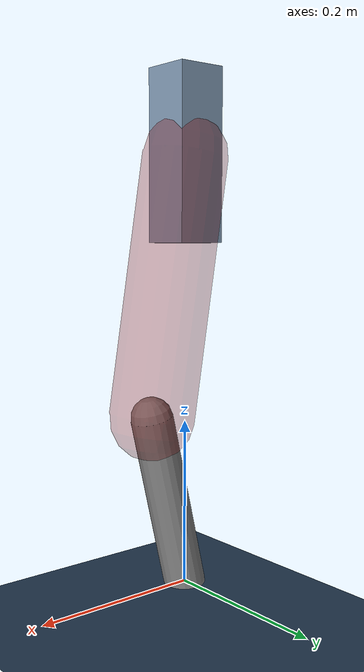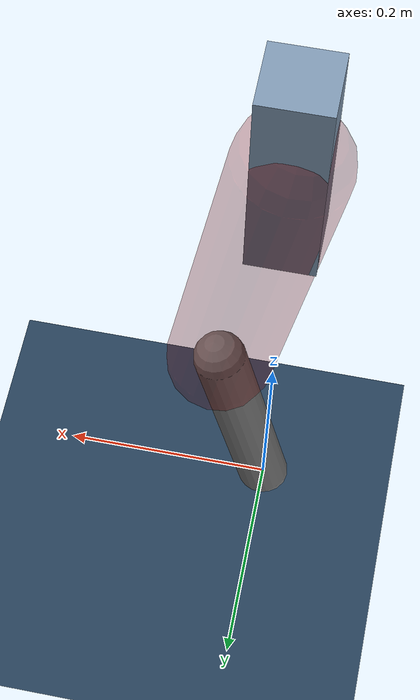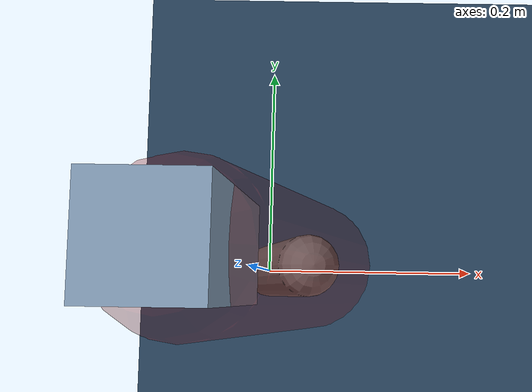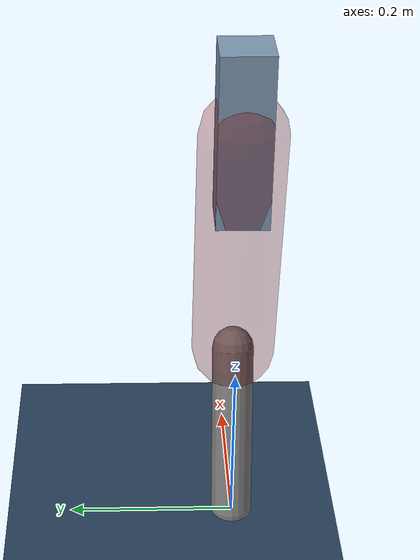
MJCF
<mujoco model="Hopper2D">
	<compiler inertiafromgeom="true" angle="radian" />
	<option timestep="0.001" integrator="implicit" cone="elliptic" solver="Newton" tolerance="1e-10" />

	<default>
		<geom contype="1" conaffinity="1" condim="3" friction="2 0.005 0.0001" solref="0.005 1" />
		<joint limited="true" damping="0.1" />
	</default>

	<asset>
		<texture name="skybox" type="skybox" builtin="gradient" rgb1=".4 .6 .8" rgb2="0 0 0" width="800" height="800" />
		<texture name="grid" type="2d" builtin="checker" rgb1=".1 .2 .3" rgb2=".2 .3 .4" width="300" height="300" mark="edge" markrgb=".2 .3 .4" />
		<material name="ground" texture="grid" texrepeat="1 1" texuniform="true" reflectance="0.1" />
		<material name="leg" rgba="0.5 0.6 0.7 1" />
	</asset>

	<worldbody>

		<geom name="floor" type="plane" size="5 5 0.25" material="ground" />

		<light directional="false" diffuse="0.8 0.8 0.8" specular="0.3 0.3 0.3" pos="0 0 2" dir="0 0 -1" />
		<light mode="targetbodycom" target="base" directional="false" diffuse="0.8 0.8 0.8" specular="0.3 0.3 0.3" pos="0 0 2" dir="0 0 -1" />

		<camera name="fixed" pos="0 -2 1" xyaxes="1 0 0 0 0 1" />
		<camera name="tracking" mode="trackcom" pos="0 -3 1" />

		<body name="root" pos="0 0 0.5123436580153096">
			<joint name="slide_x" type="slide" axis="1 0 0" range="-100 100" />
			<joint name="slide_z" type="slide" axis="0 0 1" range="0 10" />

			<body name="base" pos="0 0 0">
				<geom name="torso" type="box" size="0.03 0.03 0.1" mass="2.261" material="leg" />

				<body name="link1" pos="0 0 0" euler="0 1.4069517830025875 0">
					<joint type="hinge" axis="0 -1 0" pos="0 0 0" name="hinge1" limited="true" range="-3.14 3.14" stiffness="0" damping="0.1" />
					<geom name="thigh" type="capsule" fromto="0 0 0 0.3068181824004899 0 0" size="0.05" rgba="0.5 0 0 0.3" mass="1.0072090924813228" />

					<body name="link2" pos="0.3068181824004899 0 0" euler="0 0.39818750513312245 0">
						<joint type="hinge" axis="0 -1 0" pos="0 0 0" name="hinge2" limited="true" range="-3.14 3.14" stiffness="0" damping="0.1" />
						<geom name="shank" type="capsule" fromto="0 0 0 0.2155254756148196 0 0" size="0.025" mass="0.4139203804918557" />

					</body>
				</body>
			</body>
		</body>
	</worldbody>

	<actuator>
		<motor name="torque1" joint="hinge1" ctrlrange="-23.180424384134056 23.180424384134056" ctrllimited="true" gear="1" />
		<motor name="torque2" joint="hinge2" ctrlrange="-53.87633844175004 53.87633844175004" ctrllimited="true" gear="1" />
	</actuator>
</mujoco>
